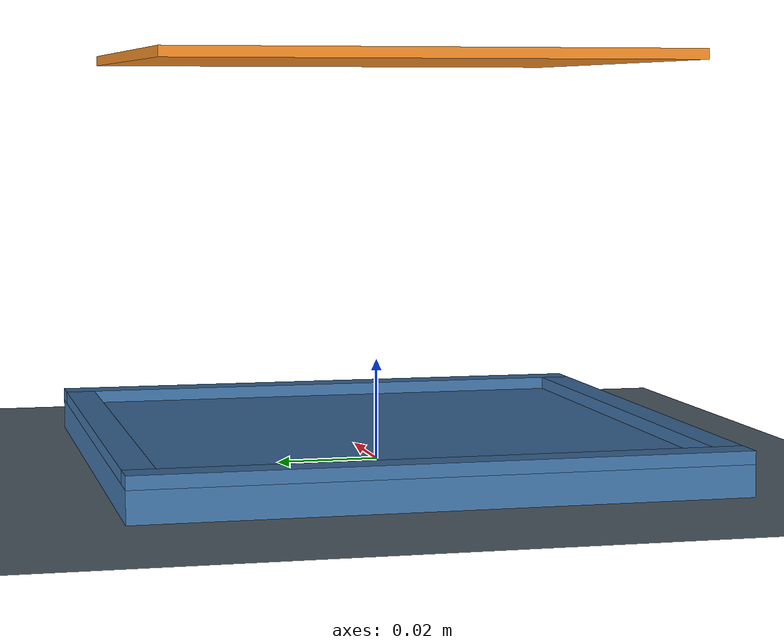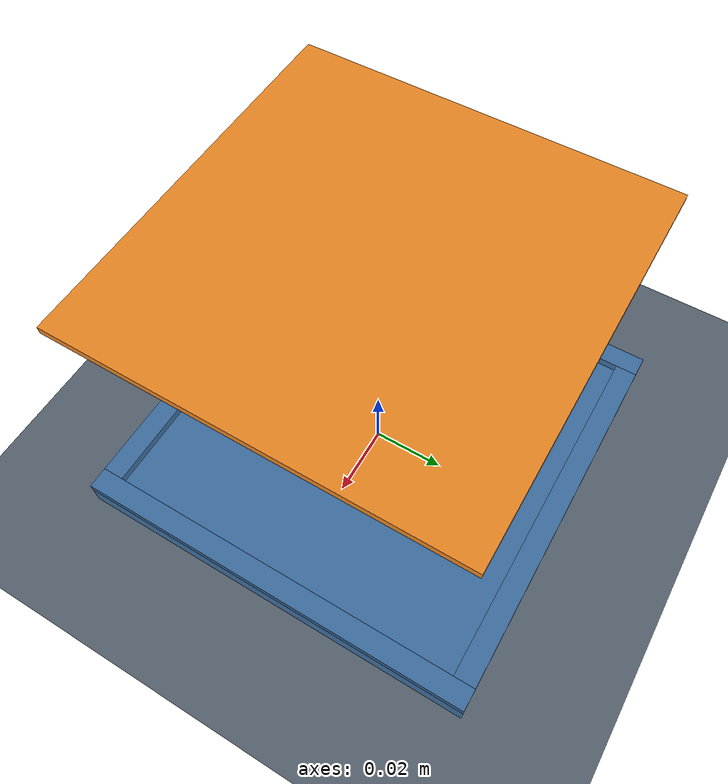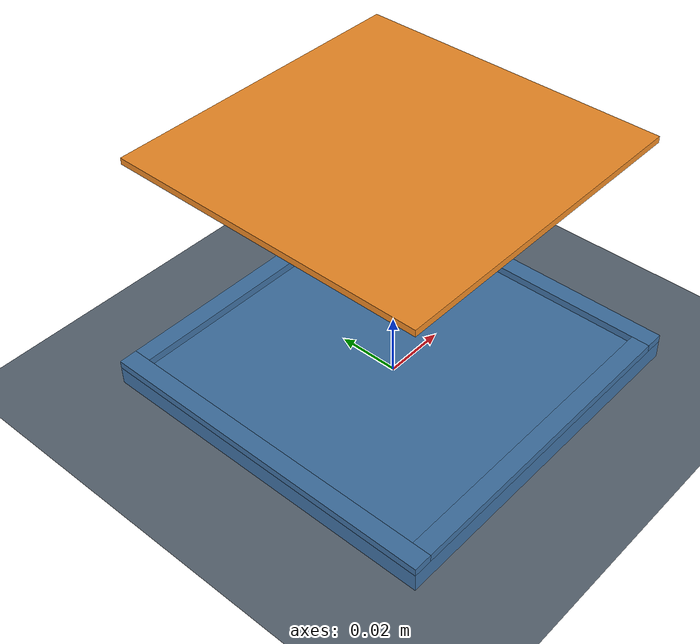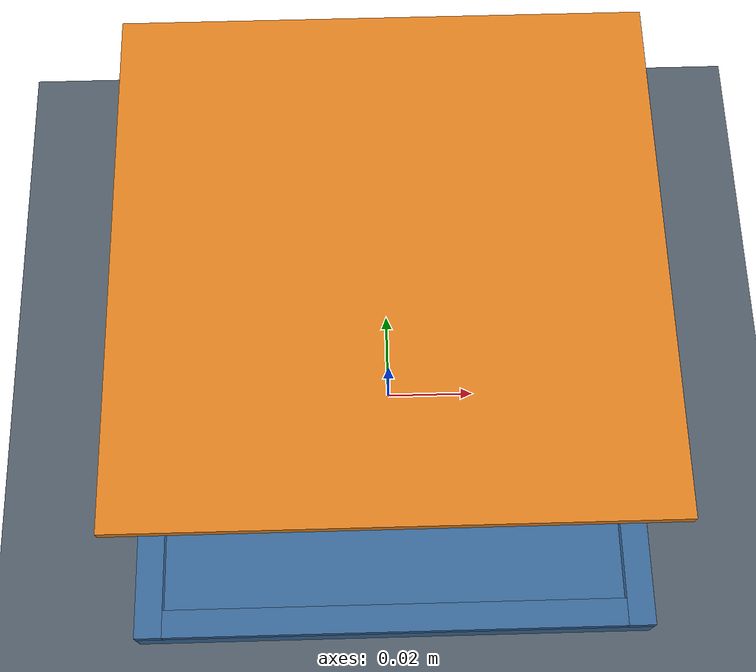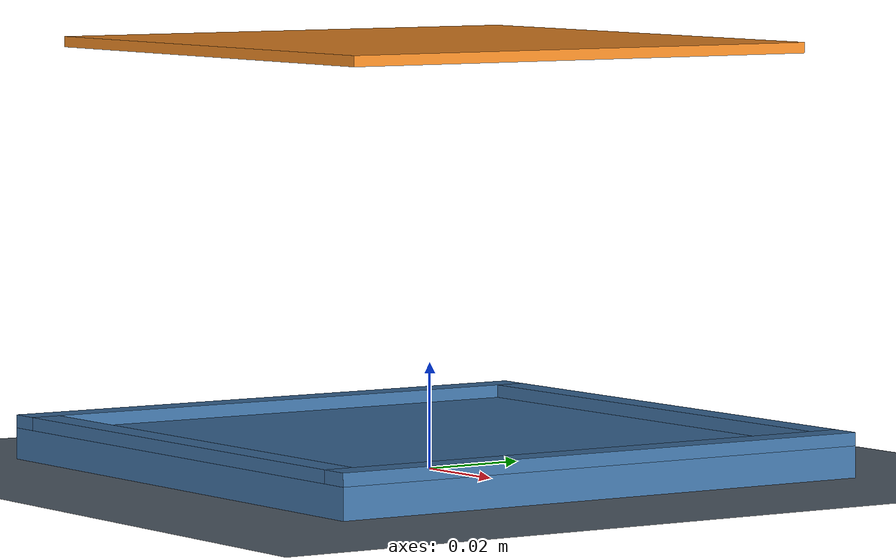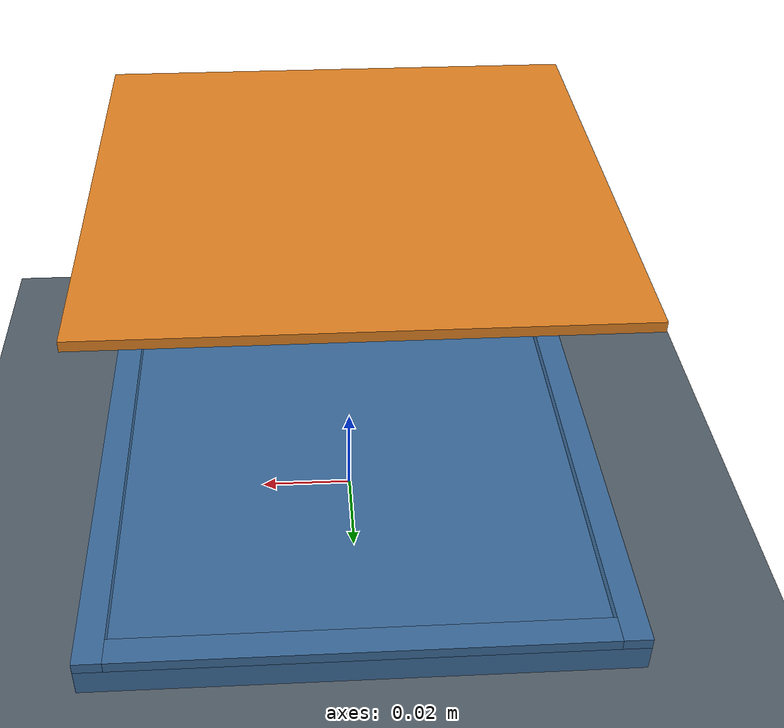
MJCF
<mujoco model="spring_panel">
    <compiler angle="radian"/>
    <option timestep="0.002" gravity="0 0 -9.81" integrator="implicitfast"/>

    <visual>
        <headlight ambient="0.4 0.4 0.4" diffuse="0.7 0.7 0.7"/>
    </visual>

    <default>
        <geom friction="0.8 0.01 0.001" condim="3" solref="0.005 1"/>
    </default>

    <worldbody>
        <light pos="0 -1 3" dir="0 0 -1"/>
        <geom name="floor" type="plane" pos="0 0 0" size="0.8 0.8 0.05"
              rgba="0.35 0.4 0.45 1"/>
        <body name="holder">
            <geom name="holder_base" type="box" pos="0 0 0.003"
                  size="0.057 0.057 0.003" rgba="0.25 0.45 0.65 1"/>
            <geom name="holder_left" type="box" pos="-0.054 0 0.00725"
                  size="0.003 0.057 0.00125" rgba="0.25 0.45 0.65 1"/>
            <geom name="holder_right" type="box" pos="0.054 0 0.00725"
                  size="0.003 0.057 0.00125" rgba="0.25 0.45 0.65 1"/>
            <geom name="holder_front" type="box" pos="0 -0.054 0.00725"
                  size="0.051 0.003 0.00125" rgba="0.25 0.45 0.65 1"/>
            <geom name="holder_back" type="box" pos="0 0.054 0.00725"
                  size="0.051 0.003 0.00125" rgba="0.25 0.45 0.65 1"/>
        </body>
        <body name="panel" pos="0 0 0.08">
            <freejoint name="panel_free"/>
            <geom name="panel" type="box" size="0.05 0.05 0.001"
                  mass="1" rgba="0.95 0.55 0.15 1"/>
        </body>
    </worldbody>
</mujoco>
